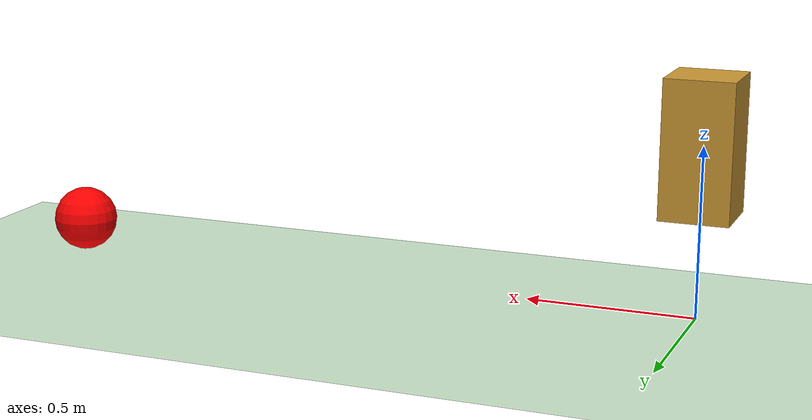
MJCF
<mujoco model="tung_sahur_demo_scene">

  <!-- Compiler settings -->
  <compiler angle="radian" coordinate="local" inertiafromgeom="true"/>

  <!-- Size and timestep -->
  <size nconmax="50" njmax="100" nstack="300000"/>
  <option timestep="0.002" iterations="50"/>

  <!-- Visual settings -->
  <visual>
    <rgba haze="0.3 0.3 0.3 1"/>
    <quality shadowsize="2048"/>
    <map force="0.1" zfar="30"/>
  </visual>

  <!-- Default classes -->
  <default>
    <light cutoff="100" exponent="1"/>
    <geom rgba="0.8 0.6 .4 1" margin="0.001" condim="3" conaffinity="1" friction="1 0.1 0.1"/>
    <motor ctrlrange="-1 1" ctrllimited="true"/>
  </default>

  <!-- Assets -->
  <asset>
    <texture builtin="gradient" height="100" rgb1=".4 .5 .6" rgb2="0 0 0" type="skybox" width="100"/>
    <texture builtin="flat" height="1278" mark="cross" markrgb="1 1 1" name="texgeom" random="0.01" rgb1="0.8 0.6 0.4" rgb2="0.8 0.6 0.4" type="cube" width="127"/>
    <texture builtin="checker" height="100" name="texplane" rgb1="0 0 0" rgb2="0.8 0.8 0.8" type="2d" width="100"/>
    <material name="MatPlane" reflectance="0.5" shininess="1" specular="1" texrepeat="60 60" texture="texplane"/>
    <material name="geom" texture="texgeom" texuniform="true"/>
  </asset>

  <!-- World body -->
  <worldbody>
    <!-- Lighting -->
    <light cutoff="100" diffuse="1 1 1" dir="-0 0 -1.3" directional="true" exponent="1" pos="0 0 1.3" specular=".1 .1 .1"/>

    <!-- Ground plane -->
    <geom conaffinity="1" condim="3" material="MatPlane" name="floor" pos="0 0 0" rgba="0.8 0.9 0.8 1" size="40 40 40" type="plane"/>

    <!-- Include hero robot -->
    <body name="tung_sahur_demo" pos="0 0 0.5">
      <!-- Include URDF here or define robot geometry -->
      <geom name="tung_sahur_demo_base" type="box" size="0.1 0.1 0.2" rgba="0.8 0.6 0.2 1"/>
      <joint name="tung_sahur_demo_free" type="free"/>
    </body>

    <!-- Additional scene objects -->
    <body name="target" pos="2 0 0.1">
      <geom name="target_geom" type="sphere" size="0.1" rgba="1 0 0 1"/>
    </body>
  </worldbody>

  <!-- Actuators (if needed) -->
  <actuator>
    <!-- Add motors/actuators for joints here -->
  </actuator>

</mujoco>
